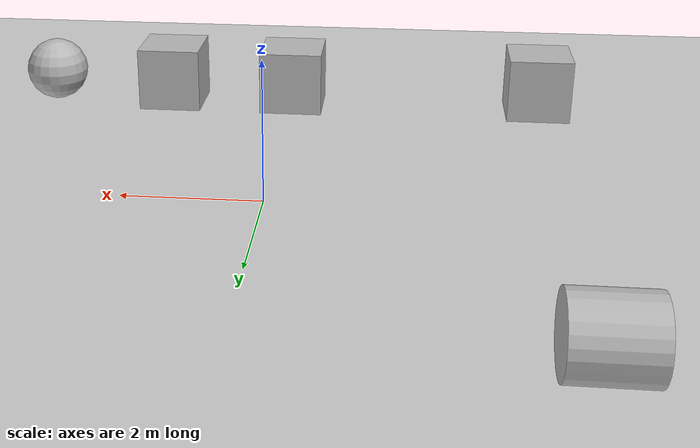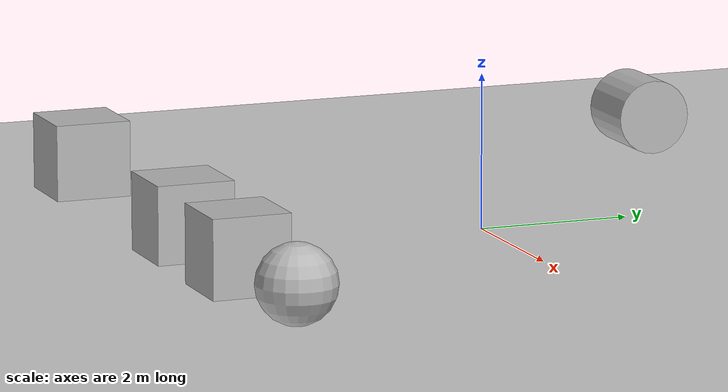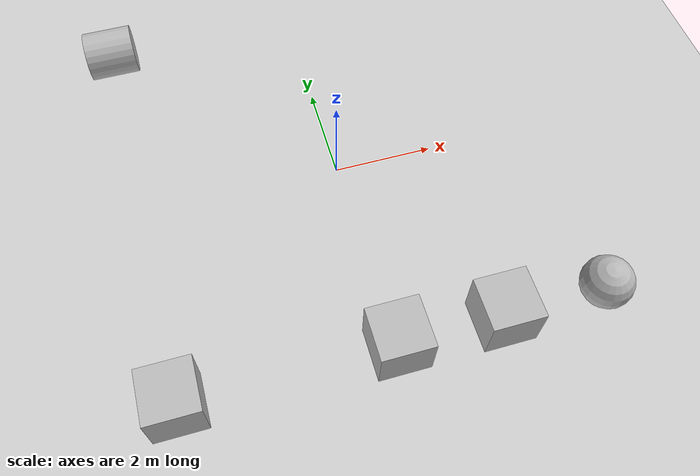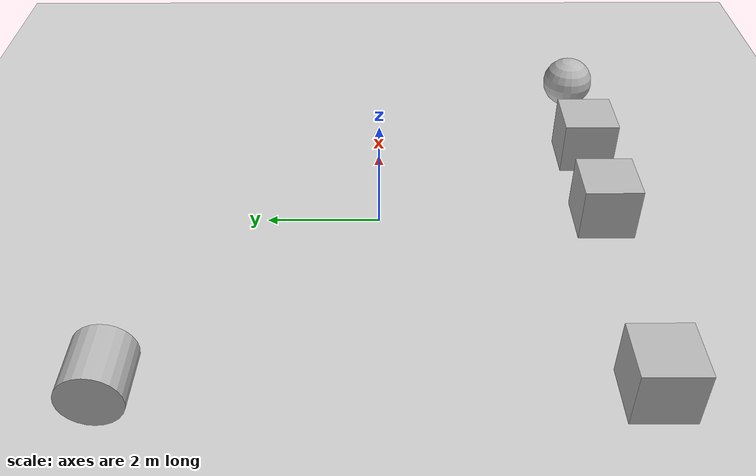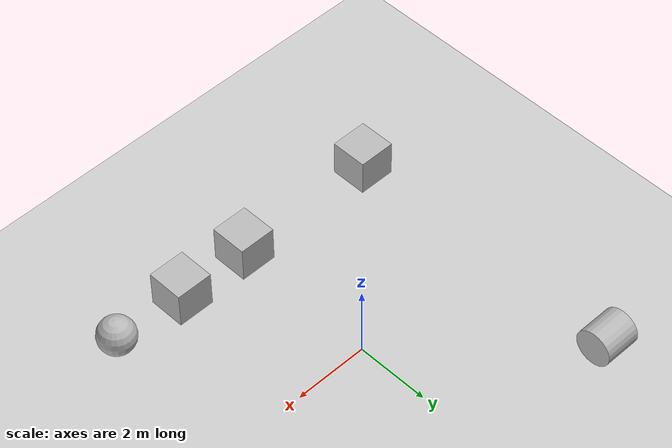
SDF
<?xml version="1.0" ?>
<sdf version="1.4">
  <!-- We use a custom world for the rrbot so that the camera angle is launched correctly -->

  <world name="default">
    <include>
      <uri>model://ground_plane</uri>
    </include>

    <!-- Global light source -->
    <include>
      <uri>model://sun</uri>
    </include>

    <model name="box">
      <pose>-4 -4 0.5 0 0 0</pose>
      <link name="link">
        <collision name="collision">
          <geometry>
            <box>
              <size>1 1 1</size>
            </box>
          </geometry>
        </collision>
        <visual name="visual">
          <geometry>
            <box>
              <size>1 1 1</size>
            </box>
          </geometry>
        </visual>
      </link>
    </model>

    <model name="box1">
      <pose>0 -4 0.5 0 0 0</pose>
      <link name="link">
        <collision name="collision">
          <geometry>
            <box>
              <size>1 1 1</size>
            </box>
          </geometry>
        </collision>
        <visual name="visual">
          <geometry>
            <box>
              <size>1 1 1</size>
            </box>
          </geometry>
        </visual>
      </link>
    </model>
    <model name="box2">
      <pose>2 -4 0.5 0 0 0</pose>
      <link name="link">
        <collision name="collision">
          <geometry>
            <box>
              <size>1 1 1</size>
            </box>
          </geometry>
        </collision>
        <visual name="visual">
          <geometry>
            <box>
              <size>1 1 1</size>
            </box>
          </geometry>
        </visual>
      </link>
    </model>

    <model name="sphere">
      <pose>4 -4 0.5 0 0 0</pose>
      <link name="link">
        <collision name="collision">
          <geometry>
            <sphere>
              <radius>0.5</radius>
            </sphere>
          </geometry>
        </collision>
        <visual name="visual">
          <geometry>
            <sphere>
              <radius>0.5</radius>
            </sphere>
          </geometry>
        </visual>
      </link>
    </model>
    <model name="cylinder">
      <pose>-4 4 0.5 0 1.5707 0</pose>
      <link name="link">
        <collision name="collision">
          <geometry>
            <cylinder>
              <radius>0.5</radius>
              <length>1.0</length>
            </cylinder>
          </geometry>
        </collision>
        <visual name="visual">
          <geometry>
            <cylinder>
              <radius>0.5</radius>
              <length>1.0</length>
            </cylinder>
          </geometry>
        </visual>
      </link>
    </model>

    <!-- Focus camera on tall pendulum -->
    <gui fullscreen='0'>
      <camera name='user_camera'>
        <pose>4.927360 -4.376610 3.740080 0.000000 0.275643 2.356190</pose>
        <view_controller>orbit</view_controller>
      </camera>
    </gui>

  </world>
</sdf>
